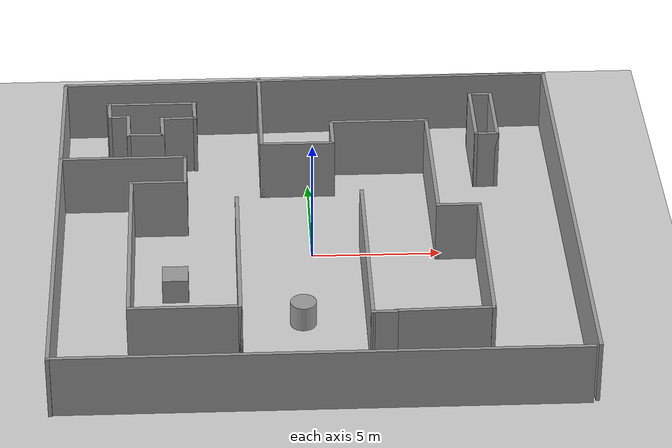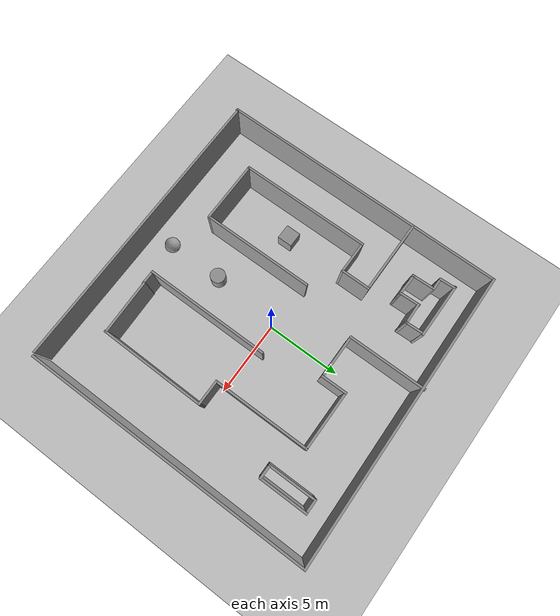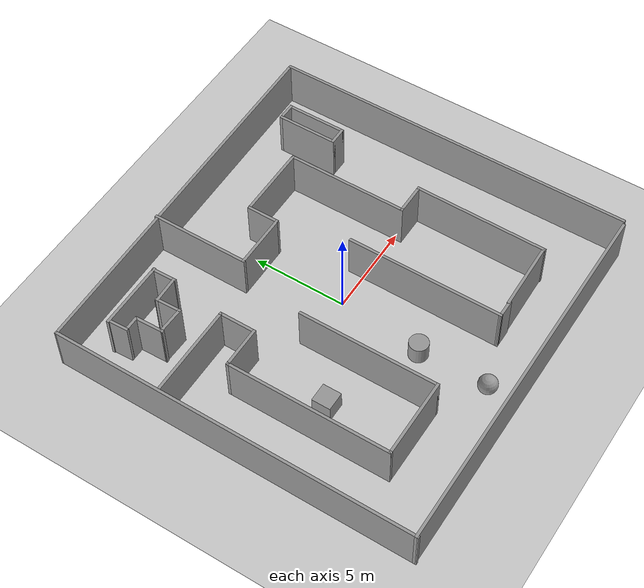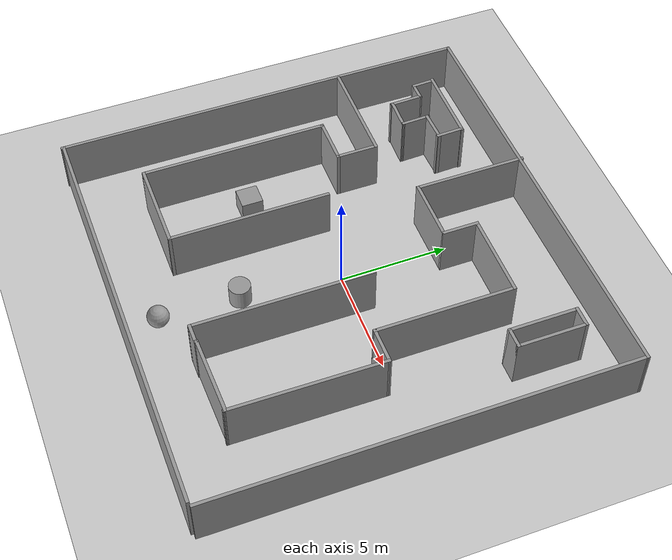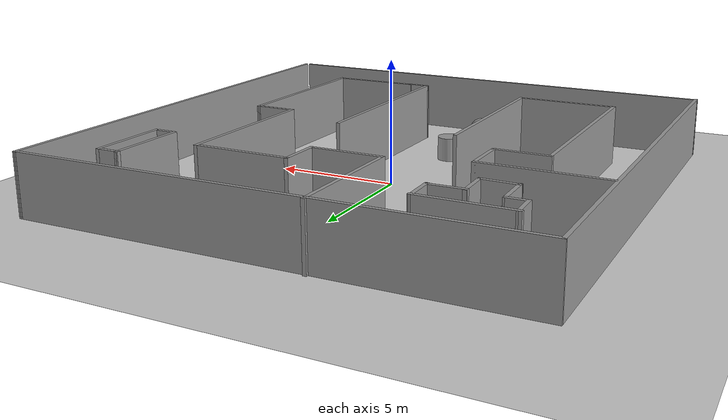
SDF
<sdf version="1.7">
 <world name="default">
  <light name="sun" type="directional">
   <pose>0 0 10 0 -0 0</pose>
   <diffuse>0.8 0.8 0.8 1</diffuse>
   <specular>0.2 0.2 0.2 1</specular>
   <attenuation>
    <range>1000</range>
    <constant>0.9</constant>
    <linear>0.01</linear>
    <quadratic>0.001</quadratic>
   </attenuation>
   <direction>-0.5 0.1 -0.9</direction>
   <spot><inner_angle>0</inner_angle><outer_angle>0</outer_angle><falloff>0</falloff></spot>
  </light>
  <model name="ground_plane">
   <static>1</static>
   <link name="link">
    <collision name="collision">
     <geometry><plane><normal>0 0 1</normal><size>100 100</size></plane></geometry>
     <surface><friction><ode><mu>100</mu><mu2>50</mu2></ode></friction></surface>
    </collision>
    <visual name="visual">
     <cast_shadows>0</cast_shadows>
     <geometry><plane><normal>0 0 1</normal><size>100 100</size></plane></geometry>
     <material>
      <script><uri>file://media/materials/scripts/gazebo.material</uri><name>Gazebo/Grey</name></script>
     </material>
    </visual>
   </link>
  </model>
  <gravity>0 0 -9.8</gravity>
  <magnetic_field>6e-06 2.3e-05 -4.2e-05</magnetic_field>
  <atmosphere type="adiabatic"/>
  <physics type="ode">
   <max_step_size>0.001</max_step_size>
   <real_time_factor>1</real_time_factor>
   <real_time_update_rate>1000</real_time_update_rate>
  </physics>
  <scene><ambient>0.4 0.4 0.4 1</ambient><background>0.7 0.7 0.7 1</background><shadows>1</shadows></scene>
  <audio><device>default</device></audio>
  <spherical_coordinates>
   <surface_model>EARTH_WGS84</surface_model>
   <latitude_deg>0</latitude_deg>
   <longitude_deg>0</longitude_deg>
   <elevation>0</elevation>
   <heading_deg>0</heading_deg>
  </spherical_coordinates>
  <model name="test5">
   <pose>0.053048 -0.209405 0 0 -0 0</pose>
   <link name="Wall_0">
    <collision name="Wall_0_Collision">
     <geometry><box><size>19.75 0.15 2.5</size></box></geometry>
     <pose>0 0 1.25 0 -0 0</pose>
    </collision>
    <visual name="Wall_0_Visual">
     <pose>0 0 1.25 0 -0 0</pose>
     <geometry><box><size>19.75 0.15 2.5</size></box></geometry>
     <material>
      <script><uri>file://media/materials/scripts/gazebo.material</uri><name>Gazebo/Grey</name></script>
      <ambient>1 1 1 1</ambient>
     </material>
     <meta><layer>0</layer></meta>
    </visual>
    <pose>-0.118822 -9.70493 0 0 -0 0</pose>
   </link>
   <link name="Wall_2">
    <collision name="Wall_2_Collision">
     <geometry><box><size>19.3754 0.15 2.5</size></box></geometry>
     <pose>0 0 1.25 0 -0 0</pose>
    </collision>
    <visual name="Wall_2_Visual">
     <pose>0 0 1.25 0 -0 0</pose>
     <geometry><box><size>19.3754 0.15 2.5</size></box></geometry>
     <material>
      <script><uri>file://media/materials/scripts/gazebo.material</uri><name>Gazebo/Grey</name></script>
      <ambient>1 1 1 1</ambient>
     </material>
     <meta><layer>0</layer></meta>
    </visual>
    <pose>-9.89894 -0.146047 0 0 -0 1.56873</pose>
   </link>
   <link name="Wall_3">
    <collision name="Wall_3_Collision">
     <geometry><box><size>19.9486 0.15 2.5</size></box></geometry>
     <pose>0 0 1.25 0 -0 0</pose>
    </collision>
    <visual name="Wall_3_Visual">
     <pose>0 0 1.25 0 -0 0</pose>
     <geometry><box><size>19.9486 0.15 2.5</size></box></geometry>
     <material>
      <script><uri>file://media/materials/scripts/gazebo.material</uri><name>Gazebo/Grey</name></script>
      <ambient>1 1 1 1</ambient>
     </material>
     <meta><layer>0</layer></meta>
    </visual>
    <pose>0.019502 9.6357 0 0 -0 0.012352</pose>
   </link>
   <link name="Wall_4">
    <collision name="Wall_4_Collision">
     <geometry><box><size>19.5 0.15 2.5</size></box></geometry>
     <pose>0 0 1.25 0 -0 0</pose>
    </collision>
    <visual name="Wall_4_Visual">
     <pose>0 0 1.25 0 -0 0</pose>
     <geometry><box><size>19.5 0.15 2.5</size></box></geometry>
     <material>
      <script><uri>file://media/materials/scripts/gazebo.material</uri><name>Gazebo/Grey</name></script>
      <ambient>1 1 1 1</ambient>
     </material>
     <meta><layer>0</layer></meta>
    </visual>
    <pose>9.91806 0.082971 0 0 -0 -1.5708</pose>
   </link>
   <link name="Wall_43">
    <collision name="Wall_43_Collision">
     <geometry><box><size>5 0.15 2.5</size></box></geometry>
     <pose>0 0 1.25 0 -0 0</pose>
    </collision>
    <visual name="Wall_43_Visual">
     <pose>0 0 1.25 0 -0 0</pose>
     <geometry><box><size>5 0.15 2.5</size></box></geometry>
     <material>
      <script><uri>file://media/materials/scripts/gazebo.material</uri><name>Gazebo/Grey</name></script>
      <ambient>1 1 1 1</ambient>
     </material>
     <meta><layer>0</layer></meta>
    </visual>
    <pose>-7.40296 3.75789 0 0 -0 0</pose>
   </link>
   <link name="Wall_45">
    <collision name="Wall_45_Collision">
     <geometry><box><size>2 0.15 2.5</size></box></geometry>
     <pose>0 0 1.25 0 -0 0</pose>
    </collision>
    <visual name="Wall_45_Visual">
     <pose>0 0 1.25 0 -0 0</pose>
     <geometry><box><size>2 0.15 2.5</size></box></geometry>
     <material>
      <script><uri>file://media/materials/scripts/gazebo.material</uri><name>Gazebo/Grey</name></script>
      <ambient>1 1 1 1</ambient>
     </material>
     <meta><layer>0</layer></meta>
    </visual>
    <pose>-4.97796 2.83289 0 0 -0 -1.5708</pose>
   </link>
   <link name="Wall_46">
    <collision name="Wall_46_Collision">
     <geometry><box><size>2.25 0.15 2.5</size></box></geometry>
     <pose>0 0 1.25 0 -0 0</pose>
    </collision>
    <visual name="Wall_46_Visual">
     <pose>0 0 1.25 0 -0 0</pose>
     <geometry><box><size>2.25 0.15 2.5</size></box></geometry>
     <material>
      <script><uri>file://media/materials/scripts/gazebo.material</uri><name>Gazebo/Grey</name></script>
      <ambient>1 1 1 1</ambient>
     </material>
     <meta><layer>0</layer></meta>
    </visual>
    <pose>-6.02796 1.90789 0 0 -0 3.14159</pose>
   </link>
   <link name="Wall_47">
    <collision name="Wall_47_Collision">
     <geometry><box><size>8.75 0.15 2.5</size></box></geometry>
     <pose>0 0 1.25 0 -0 0</pose>
    </collision>
    <visual name="Wall_47_Visual">
     <pose>0 0 1.25 0 -0 0</pose>
     <geometry><box><size>8.75 0.15 2.5</size></box></geometry>
     <material>
      <script><uri>file://media/materials/scripts/gazebo.material</uri><name>Gazebo/Grey</name></script>
      <ambient>1 1 1 1</ambient>
     </material>
     <meta><layer>0</layer></meta>
    </visual>
    <pose>-7.07796 -2.39211 0 0 -0 -1.5708</pose>
   </link>
   <link name="Wall_48">
    <collision name="Wall_48_Collision">
     <geometry><box><size>4.25 0.15 2.5</size></box></geometry>
     <pose>0 0 1.25 0 -0 0</pose>
    </collision>
    <visual name="Wall_48_Visual">
     <pose>0 0 1.25 0 -0 0</pose>
     <geometry><box><size>4.25 0.15 2.5</size></box></geometry>
     <material>
      <script><uri>file://media/materials/scripts/gazebo.material</uri><name>Gazebo/Grey</name></script>
      <ambient>1 1 1 1</ambient>
     </material>
     <meta><layer>0</layer></meta>
    </visual>
    <pose>-5.02796 -6.69211 0 0 -0 0</pose>
   </link>
   <link name="Wall_50">
    <collision name="Wall_50_Collision">
     <geometry><box><size>7.5 0.15 2.5</size></box></geometry>
     <pose>0 0 1.25 0 -0 0</pose>
    </collision>
    <visual name="Wall_50_Visual">
     <pose>0 0 1.25 0 -0 0</pose>
     <geometry><box><size>7.5 0.15 2.5</size></box></geometry>
     <material>
      <script><uri>file://media/materials/scripts/gazebo.material</uri><name>Gazebo/Grey</name></script>
      <ambient>1 1 1 1</ambient>
     </material>
     <meta><layer>0</layer></meta>
    </visual>
    <pose>-2.97796 -3.01711 0 0 -0 -1.5708</pose>
   </link>
   <link name="Wall_52">
    <collision name="Wall_52_Collision">
     <geometry><box><size>5.25 0.15 2.5</size></box></geometry>
     <pose>0 0 1.25 0 -0 0</pose>
    </collision>
    <visual name="Wall_52_Visual">
     <pose>0 0 1.25 0 -0 0</pose>
     <geometry><box><size>5.25 0.15 2.5</size></box></geometry>
     <material>
      <script><uri>file://media/materials/scripts/gazebo.material</uri><name>Gazebo/Grey</name></script>
      <ambient>1 1 1 1</ambient>
     </material>
     <meta><layer>0</layer></meta>
    </visual>
    <pose>-1.915 7.14935 0 0 -0 -1.5708</pose>
   </link>
   <link name="Wall_53">
    <collision name="Wall_53_Collision">
     <geometry><box><size>3 0.15 2.5</size></box></geometry>
     <pose>0 0 1.25 0 -0 0</pose>
    </collision>
    <visual name="Wall_53_Visual">
     <pose>0 0 1.25 0 -0 0</pose>
     <geometry><box><size>3 0.15 2.5</size></box></geometry>
     <material>
      <script><uri>file://media/materials/scripts/gazebo.material</uri><name>Gazebo/Grey</name></script>
      <ambient>1 1 1 1</ambient>
     </material>
     <meta><layer>0</layer></meta>
    </visual>
    <pose>-0.489999 4.59935 0 0 -0 0</pose>
   </link>
   <link name="Wall_54">
    <collision name="Wall_54_Collision">
     <geometry><box><size>1.75 0.15 2.5</size></box></geometry>
     <pose>0 0 1.25 0 -0 0</pose>
    </collision>
    <visual name="Wall_54_Visual">
     <pose>0 0 1.25 0 -0 0</pose>
     <geometry><box><size>1.75 0.15 2.5</size></box></geometry>
     <material>
      <script><uri>file://media/materials/scripts/gazebo.material</uri><name>Gazebo/Grey</name></script>
      <ambient>1 1 1 1</ambient>
     </material>
     <meta><layer>0</layer></meta>
    </visual>
    <pose>0.935001 5.39935 0 0 -0 1.5708</pose>
   </link>
   <link name="Wall_55">
    <collision name="Wall_55_Collision">
     <geometry><box><size>4 0.15 2.5</size></box></geometry>
     <pose>0 0 1.25 0 -0 0</pose>
    </collision>
    <visual name="Wall_55_Visual">
     <pose>0 0 1.25 0 -0 0</pose>
     <geometry><box><size>4 0.15 2.5</size></box></geometry>
     <material>
      <script><uri>file://media/materials/scripts/gazebo.material</uri><name>Gazebo/Grey</name></script>
      <ambient>1 1 1 1</ambient>
     </material>
     <meta><layer>0</layer></meta>
    </visual>
    <pose>2.86 6.19935 0 0 -0 0</pose>
   </link>
   <link name="Wall_56">
    <collision name="Wall_56_Collision">
     <geometry><box><size>6.5 0.15 2.5</size></box></geometry>
     <pose>0 0 1.25 0 -0 0</pose>
    </collision>
    <visual name="Wall_56_Visual">
     <pose>0 0 1.25 0 -0 0</pose>
     <geometry><box><size>6.5 0.15 2.5</size></box></geometry>
     <material>
      <script><uri>file://media/materials/scripts/gazebo.material</uri><name>Gazebo/Grey</name></script>
      <ambient>1 1 1 1</ambient>
     </material>
     <meta><layer>0</layer></meta>
    </visual>
    <pose>4.785 3.02435 0 0 -0 -1.5708</pose>
   </link>
   <link name="Wall_57">
    <collision name="Wall_57_Collision">
     <geometry><box><size>1.75 0.15 2.5</size></box></geometry>
     <pose>0 0 1.25 0 -0 0</pose>
    </collision>
    <visual name="Wall_57_Visual">
     <pose>0 0 1.25 0 -0 0</pose>
     <geometry><box><size>1.75 0.15 2.5</size></box></geometry>
     <material>
      <script><uri>file://media/materials/scripts/gazebo.material</uri><name>Gazebo/Grey</name></script>
      <ambient>1 1 1 1</ambient>
     </material>
     <meta><layer>0</layer></meta>
    </visual>
    <pose>5.585 -0.15065 0 0 -0 0</pose>
   </link>
   <link name="Wall_58">
    <collision name="Wall_58_Collision">
     <geometry><box><size>7.16373 0.15 2.5</size></box></geometry>
     <pose>0 0 1.25 0 -0 0</pose>
    </collision>
    <visual name="Wall_58_Visual">
     <pose>0 0 1.25 0 -0 0</pose>
     <geometry><box><size>7.16373 0.15 2.5</size></box></geometry>
     <material>
      <script><uri>file://media/materials/scripts/gazebo.material</uri><name>Gazebo/Grey</name></script>
      <ambient>1 1 1 1</ambient>
     </material>
     <meta><layer>0</layer></meta>
    </visual>
    <pose>6.34697 -3.65731 0 0 -0 -1.58164</pose>
   </link>
   <link name="Wall_59">
    <collision name="Wall_59_Collision">
     <geometry><box><size>3.75092 0.15 2.5</size></box></geometry>
     <pose>0 0 1.25 0 -0 0</pose>
    </collision>
    <visual name="Wall_59_Visual">
     <pose>0 0 1.25 0 -0 0</pose>
     <geometry><box><size>3.75092 0.15 2.5</size></box></geometry>
     <material>
      <script><uri>file://media/materials/scripts/gazebo.material</uri><name>Gazebo/Grey</name></script>
      <ambient>1 1 1 1</ambient>
     </material>
     <meta><layer>0</layer></meta>
    </visual>
    <pose>4.50894 -7.16397 0 0 -0 -3.11899</pose>
   </link>
   <link name="Wall_60">
    <collision name="Wall_60_Collision">
     <geometry><box><size>1 0.15 2.5</size></box></geometry>
     <pose>0 0 1.25 0 -0 0</pose>
    </collision>
    <visual name="Wall_60_Visual">
     <pose>0 0 1.25 0 -0 0</pose>
     <geometry><box><size>1 0.15 2.5</size></box></geometry>
     <material>
      <script><uri>file://media/materials/scripts/gazebo.material</uri><name>Gazebo/Grey</name></script>
      <ambient>1 1 1 1</ambient>
     </material>
     <meta><layer>0</layer></meta>
    </visual>
    <pose>2.28394 -7.24534 0 0 -0 3.14159</pose>
   </link>
   <link name="Wall_61">
    <collision name="Wall_61_Collision">
     <geometry><box><size>8.35577 0.15 2.5</size></box></geometry>
     <pose>0 0 1.25 0 -0 0</pose>
    </collision>
    <visual name="Wall_61_Visual">
     <pose>0 0 1.25 0 -0 0</pose>
     <geometry><box><size>8.35577 0.15 2.5</size></box></geometry>
     <material>
      <script><uri>file://media/materials/scripts/gazebo.material</uri><name>Gazebo/Grey</name></script>
      <ambient>1 1 1 1</ambient>
     </material>
     <meta><layer>0</layer></meta>
    </visual>
    <pose>1.87288 -3.14248 0 0 -0 1.5674</pose>
   </link>
   <link name="Wall_63">
    <collision name="Wall_63_Collision">
     <geometry><box><size>3.25 0.15 2.5</size></box></geometry>
     <pose>0 0 1.25 0 -0 0</pose>
    </collision>
    <visual name="Wall_63_Visual">
     <pose>0 0 1.25 0 -0 0</pose>
     <geometry><box><size>3.25 0.15 2.5</size></box></geometry>
     <material>
      <script><uri>file://media/materials/scripts/gazebo.material</uri><name>Gazebo/Grey</name></script>
      <ambient>1 1 1 1</ambient>
     </material>
     <meta><layer>0</layer></meta>
    </visual>
    <pose>6.71837 6.62008 0 0 -0 -1.5708</pose>
   </link>
   <link name="Wall_64">
    <collision name="Wall_64_Collision">
     <geometry><box><size>1 0.15 2.5</size></box></geometry>
     <pose>0 0 1.25 0 -0 0</pose>
    </collision>
    <visual name="Wall_64_Visual">
     <pose>0 0 1.25 0 -0 0</pose>
     <geometry><box><size>1 0.15 2.5</size></box></geometry>
     <material>
      <script><uri>file://media/materials/scripts/gazebo.material</uri><name>Gazebo/Grey</name></script>
      <ambient>1 1 1 1</ambient>
     </material>
     <meta><layer>0</layer></meta>
    </visual>
    <pose>7.14337 5.07008 0 0 -0 0</pose>
   </link>
   <link name="Wall_65">
    <collision name="Wall_65_Collision">
     <geometry><box><size>3.25 0.15 2.5</size></box></geometry>
     <pose>0 0 1.25 0 -0 0</pose>
    </collision>
    <visual name="Wall_65_Visual">
     <pose>0 0 1.25 0 -0 0</pose>
     <geometry><box><size>3.25 0.15 2.5</size></box></geometry>
     <material>
      <script><uri>file://media/materials/scripts/gazebo.material</uri><name>Gazebo/Grey</name></script>
      <ambient>1 1 1 1</ambient>
     </material>
     <meta><layer>0</layer></meta>
    </visual>
    <pose>7.56837 6.62008 0 0 -0 1.5708</pose>
   </link>
   <link name="Wall_66">
    <collision name="Wall_66_Collision">
     <geometry><box><size>1 0.15 2.5</size></box></geometry>
     <pose>0 0 1.25 0 -0 0</pose>
    </collision>
    <visual name="Wall_66_Visual">
     <pose>0 0 1.25 0 -0 0</pose>
     <geometry><box><size>1 0.15 2.5</size></box></geometry>
     <material>
      <script><uri>file://media/materials/scripts/gazebo.material</uri><name>Gazebo/Grey</name></script>
      <ambient>1 1 1 1</ambient>
     </material>
     <meta><layer>0</layer></meta>
    </visual>
    <pose>7.14337 8.17008 0 0 -0 3.14159</pose>
   </link>
   <link name="Wall_68">
    <collision name="Wall_68_Collision">
     <geometry><box><size>1.13467 0.15 2.5</size></box></geometry>
     <pose>0 0 1.25 0 -0 0</pose>
    </collision>
    <visual name="Wall_68_Visual">
     <pose>0 0 1.25 0 -0 0</pose>
     <geometry><box><size>1.13467 0.15 2.5</size></box></geometry>
     <material>
      <script><uri>file://media/materials/scripts/gazebo.material</uri><name>Gazebo/Grey</name></script>
      <ambient>1 1 1 1</ambient>
     </material>
     <meta><layer>0</layer></meta>
    </visual>
    <pose>-8.03005 7.41253 0 0 -0 1.61213</pose>
   </link>
   <link name="Wall_69">
    <collision name="Wall_69_Collision">
     <geometry><box><size>3.67452 0.15 2.5</size></box></geometry>
     <pose>0 0 1.25 0 -0 0</pose>
    </collision>
    <visual name="Wall_69_Visual">
     <pose>0 0 1.25 0 -0 0</pose>
     <geometry><box><size>3.67452 0.15 2.5</size></box></geometry>
     <material>
      <script><uri>file://media/materials/scripts/gazebo.material</uri><name>Gazebo/Grey</name></script>
      <ambient>1 1 1 1</ambient>
     </material>
     <meta><layer>0</layer></meta>
    </visual>
    <pose>-6.32882 7.90444 0 0 -0 0</pose>
   </link>
   <link name="Wall_70">
    <collision name="Wall_70_Collision">
     <geometry><box><size>1.34384 0.15 2.5</size></box></geometry>
     <pose>0 0 1.25 0 -0 0</pose>
    </collision>
    <visual name="Wall_70_Visual">
     <pose>0 0 1.25 0 -0 0</pose>
     <geometry><box><size>1.34384 0.15 2.5</size></box></geometry>
     <material>
      <script><uri>file://media/materials/scripts/gazebo.material</uri><name>Gazebo/Grey</name></script>
      <ambient>1 1 1 1</ambient>
     </material>
     <meta><layer>0</layer></meta>
    </visual>
    <pose>-4.5869 7.30787 0 0 -0 -1.53671</pose>
   </link>
   <link name="Wall_71">
    <collision name="Wall_71_Collision">
     <geometry><box><size>1.48822 0.15 2.5</size></box></geometry>
     <pose>0 0 1.25 0 -0 0</pose>
    </collision>
    <visual name="Wall_71_Visual">
     <pose>0 0 1.25 0 -0 0</pose>
     <geometry><box><size>1.48822 0.15 2.5</size></box></geometry>
     <material>
      <script><uri>file://media/materials/scripts/gazebo.material</uri><name>Gazebo/Grey</name></script>
      <ambient>1 1 1 1</ambient>
     </material>
     <meta><layer>0</layer></meta>
    </visual>
    <pose>-5.23567 6.73164 0 0 -0 -3.1112</pose>
   </link>
   <link name="Wall_72">
    <collision name="Wall_72_Collision">
     <geometry><box><size>1.38151 0.15 2.5</size></box></geometry>
     <pose>0 0 1.25 0 -0 0</pose>
    </collision>
    <visual name="Wall_72_Visual">
     <pose>0 0 1.25 0 -0 0</pose>
     <geometry><box><size>1.38151 0.15 2.5</size></box></geometry>
     <material>
      <script><uri>file://media/materials/scripts/gazebo.material</uri><name>Gazebo/Grey</name></script>
      <ambient>1 1 1 1</ambient>
     </material>
     <meta><layer>0</layer></meta>
    </visual>
    <pose>-5.88444 6.13656 0 0 -0 -1.53775</pose>
   </link>
   <link name="Wall_73">
    <collision name="Wall_73_Collision">
     <geometry><box><size>1.51178 0.15 2.5</size></box></geometry>
     <pose>0 0 1.25 0 -0 0</pose>
    </collision>
    <visual name="Wall_73_Visual">
     <pose>0 0 1.25 0 -0 0</pose>
     <geometry><box><size>1.51178 0.15 2.5</size></box></geometry>
     <material>
      <script><uri>file://media/materials/scripts/gazebo.material</uri><name>Gazebo/Grey</name></script>
      <ambient>1 1 1 1</ambient>
     </material>
     <meta><layer>0</layer></meta>
    </visual>
    <pose>-6.54499 5.5008 0 0 -0 3.11172</pose>
   </link>
   <link name="Wall_74">
    <collision name="Wall_74_Collision">
     <geometry><box><size>1.59073 0.15 2.5</size></box></geometry>
     <pose>0 0 1.25 0 -0 0</pose>
    </collision>
    <visual name="Wall_74_Visual">
     <pose>0 0 1.25 0 -0 0</pose>
     <geometry><box><size>1.59073 0.15 2.5</size></box></geometry>
     <material>
      <script><uri>file://media/materials/scripts/gazebo.material</uri><name>Gazebo/Grey</name></script>
      <ambient>1 1 1 1</ambient>
     </material>
     <meta><layer>0</layer></meta>
    </visual>
    <pose>-7.24622 6.20053 0 0 -0 1.59904</pose>
   </link>
   <link name="Wall_75">
    <collision name="Wall_75_Collision">
     <geometry><box><size>0.75 0.15 2.5</size></box></geometry>
     <pose>0 0 1.25 0 -0 0</pose>
    </collision>
    <visual name="Wall_75_Visual">
     <pose>0 0 1.25 0 -0 0</pose>
     <geometry><box><size>0.75 0.15 2.5</size></box></geometry>
     <material>
      <script><uri>file://media/materials/scripts/gazebo.material</uri><name>Gazebo/Grey</name></script>
      <ambient>1 1 1 1</ambient>
     </material>
     <meta><layer>0</layer></meta>
    </visual>
    <pose>-7.56656 6.92061 0 0 -0 3.14159</pose>
   </link>
   <static>1</static>
  </model>
  <model name="unit_cylinder">
   <pose>-0.526328 -4.56784 0.499997 3e-06 4e-06 -0</pose>
   <link name="link">
    <inertial>
     <mass>1</mass>
     <inertia><ixx>0.145833</ixx><ixy>0</ixy><ixz>0</ixz><iyy>0.145833</iyy><iyz>0</iyz><izz>0.125</izz></inertia>
    </inertial>
    <collision name="collision">
     <geometry><cylinder><radius>0.5</radius><length>1</length></cylinder></geometry>
    </collision>
    <visual name="visual">
     <geometry><cylinder><radius>0.5</radius><length>1</length></cylinder></geometry>
     <material>
      <script><name>Gazebo/Grey</name><uri>file://media/materials/scripts/gazebo.material</uri></script>
     </material>
    </visual>
   </link>
  </model>
  <model name="unit_box">
   <pose>-5.34665 -2.5152 0.499995 -1e-05 -0 0</pose>
   <link name="link">
    <inertial>
     <mass>1</mass>
     <inertia>
      <ixx>0.166667</ixx>
      <ixy>0</ixy>
      <ixz>0</ixz>
      <iyy>0.166667</iyy>
      <iyz>0</iyz>
      <izz>0.166667</izz>
     </inertia>
    </inertial>
    <collision name="collision"><geometry><box><size>1 1 1</size></box></geometry></collision>
    <visual name="visual">
     <geometry><box><size>1 1 1</size></box></geometry>
     <material>
      <script><name>Gazebo/Grey</name><uri>file://media/materials/scripts/gazebo.material</uri></script>
     </material>
    </visual>
   </link>
  </model>
  <model name="unit_sphere">
   <pose>-0.526009 -8.30312 0.5 0 -0 0</pose>
   <link name="link">
    <inertial>
     <mass>1</mass>
     <inertia><ixx>0.1</ixx><ixy>0</ixy><ixz>0</ixz><iyy>0.1</iyy><iyz>0</iyz><izz>0.1</izz></inertia>
    </inertial>
    <collision name="collision"><geometry><sphere><radius>0.5</radius></sphere></geometry></collision>
    <visual name="visual">
     <geometry><sphere><radius>0.5</radius></sphere></geometry>
     <material>
      <script><name>Gazebo/Grey</name><uri>file://media/materials/scripts/gazebo.material</uri></script>
     </material>
    </visual>
   </link>
  </model>
 </world>
</sdf>
